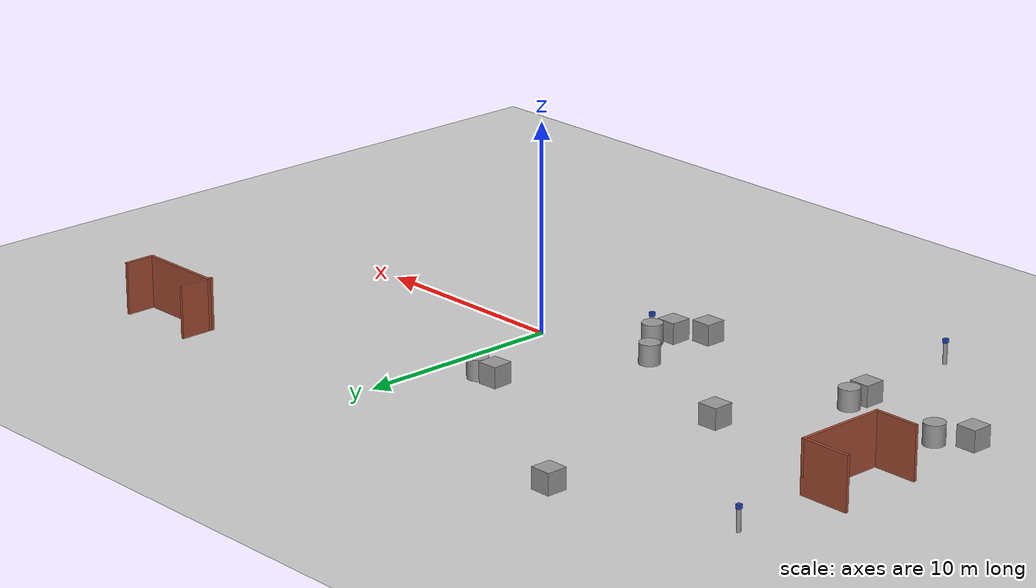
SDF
<sdf version="1.7">
 <world name="simulate_indoor">
  <model name="ground_plane">
   <static>1</static>
   <link name="link">
    <collision name="collision">
     <geometry><plane><normal>0 0 1</normal><size>100 100</size></plane></geometry>
     <surface>
      <contact><collide_bitmask>65535</collide_bitmask></contact>
      <friction><ode><mu>100</mu><mu2>50</mu2></ode></friction>
     </surface>
    </collision>
    <visual name="visual">
     <cast_shadows>0</cast_shadows>
     <geometry><plane><normal>0 0 1</normal><size>100 100</size></plane></geometry>
     <material>
      <script><uri>file://media/materials/scripts/gazebo.material</uri><name>Gazebo/Grey</name></script>
     </material>
    </visual>
   </link>
  </model>
  <model name="UWB_0">
   <link name="link_1">
    <inertial>
     <mass>1</mass>
     <inertia><ixx>0.145833</ixx><ixy>0</ixy><ixz>0</ixz><iyy>0.145833</iyy><iyz>0</iyz><izz>0.125</izz></inertia>
    </inertial>
    <pose>0 0 0.5 0 -0 0</pose>
    <visual name="visual">
     <geometry><cylinder><radius>0.1</radius><length>1</length></cylinder></geometry>
     <material>
      <lighting>1</lighting>
      <script><uri>file://media/materials/scripts/gazebo.material</uri><name>Gazebo/Grey</name></script>
     </material>
    </visual>
    <collision name="collision">
     <geometry><cylinder><radius>0.1</radius><length>1</length></cylinder></geometry>
     <surface>
      <friction>
       <ode><mu>1</mu><mu2>1</mu2><fdir1>0 0 0</fdir1><slip1>0</slip1><slip2>0</slip2></ode>
       <torsional>
        <coefficient>1</coefficient>
        <patch_radius>0</patch_radius>
        <surface_radius>0</surface_radius>
        <use_patch_radius>1</use_patch_radius>
        <ode><slip>0</slip></ode>
       </torsional>
      </friction>
      <bounce><restitution_coefficient>0</restitution_coefficient><threshold>1e+06</threshold></bounce>
      <contact>
       <collide_without_contact>0</collide_without_contact>
       <collide_without_contact_bitmask>1</collide_without_contact_bitmask>
       <collide_bitmask>1</collide_bitmask>
       <ode>
        <soft_cfm>0</soft_cfm>
        <soft_erp>0.2</soft_erp>
        <kp>1e+13</kp>
        <kd>1</kd>
        <max_vel>0.01</max_vel>
        <min_depth>0</min_depth>
       </ode>
       <bullet>
        <split_impulse>1</split_impulse>
        <split_impulse_penetration_threshold>-0.01</split_impulse_penetration_threshold>
        <soft_cfm>0</soft_cfm>
        <soft_erp>0.2</soft_erp>
        <kp>1e+13</kp>
        <kd>1</kd>
       </bullet>
      </contact>
     </surface>
    </collision>
   </link>
   <link name="link_2">
    <inertial>
     <mass>1</mass>
     <inertia>
      <ixx>0.166667</ixx>
      <ixy>0</ixy>
      <ixz>0</ixz>
      <iyy>0.166667</iyy>
      <iyz>0</iyz>
      <izz>0.166667</izz>
     </inertia>
    </inertial>
    <pose>0 0 1.1 0 -0 0</pose>
    <visual name="visual">
     <geometry><box><size>0.2 0.2 0.2</size></box></geometry>
     <material>
      <lighting>1</lighting>
      <script><uri>file://media/materials/scripts/gazebo.material</uri><name>Gazebo/Blue</name></script>
      <shader type="vertex"><normal_map>__default__</normal_map></shader>
     </material>
    </visual>
    <collision name="collision">
     <geometry><box><size>0.2 0.2 0.2</size></box></geometry>
     <surface>
      <friction>
       <ode><mu>1</mu><mu2>1</mu2><fdir1>0 0 0</fdir1><slip1>0</slip1><slip2>0</slip2></ode>
       <torsional>
        <coefficient>1</coefficient>
        <patch_radius>0</patch_radius>
        <surface_radius>0</surface_radius>
        <use_patch_radius>1</use_patch_radius>
        <ode><slip>0</slip></ode>
       </torsional>
      </friction>
      <bounce><restitution_coefficient>0</restitution_coefficient><threshold>1e+06</threshold></bounce>
      <contact>
       <collide_without_contact>0</collide_without_contact>
       <collide_without_contact_bitmask>1</collide_without_contact_bitmask>
       <collide_bitmask>1</collide_bitmask>
       <ode>
        <soft_cfm>0</soft_cfm>
        <soft_erp>0.2</soft_erp>
        <kp>1e+13</kp>
        <kd>1</kd>
        <max_vel>0.01</max_vel>
        <min_depth>0</min_depth>
       </ode>
       <bullet>
        <split_impulse>1</split_impulse>
        <split_impulse_penetration_threshold>-0.01</split_impulse_penetration_threshold>
        <soft_cfm>0</soft_cfm>
        <soft_erp>0.2</soft_erp>
        <kp>1e+13</kp>
        <kd>1</kd>
       </bullet>
      </contact>
     </surface>
    </collision>
   </link>
   <static>1</static>
   <pose>-14.8524 -10.5236 0 0 -0 0</pose>
  </model>
  <model name="UWB_3">
   <link name="link_1">
    <inertial>
     <mass>1</mass>
     <inertia><ixx>0.145833</ixx><ixy>0</ixy><ixz>0</ixz><iyy>0.145833</iyy><iyz>0</iyz><izz>0.125</izz></inertia>
    </inertial>
    <pose>0 0 0.5 0 -0 0</pose>
    <visual name="visual">
     <geometry><cylinder><radius>0.1</radius><length>1</length></cylinder></geometry>
     <material>
      <lighting>1</lighting>
      <script><uri>file://media/materials/scripts/gazebo.material</uri><name>Gazebo/Grey</name></script>
     </material>
    </visual>
    <collision name="collision">
     <geometry><cylinder><radius>0.1</radius><length>1</length></cylinder></geometry>
     <surface>
      <friction>
       <ode><mu>1</mu><mu2>1</mu2><fdir1>0 0 0</fdir1><slip1>0</slip1><slip2>0</slip2></ode>
       <torsional>
        <coefficient>1</coefficient>
        <patch_radius>0</patch_radius>
        <surface_radius>0</surface_radius>
        <use_patch_radius>1</use_patch_radius>
        <ode><slip>0</slip></ode>
       </torsional>
      </friction>
      <bounce><restitution_coefficient>0</restitution_coefficient><threshold>1e+06</threshold></bounce>
      <contact>
       <collide_without_contact>0</collide_without_contact>
       <collide_without_contact_bitmask>1</collide_without_contact_bitmask>
       <collide_bitmask>1</collide_bitmask>
       <ode>
        <soft_cfm>0</soft_cfm>
        <soft_erp>0.2</soft_erp>
        <kp>1e+13</kp>
        <kd>1</kd>
        <max_vel>0.01</max_vel>
        <min_depth>0</min_depth>
       </ode>
       <bullet>
        <split_impulse>1</split_impulse>
        <split_impulse_penetration_threshold>-0.01</split_impulse_penetration_threshold>
        <soft_cfm>0</soft_cfm>
        <soft_erp>0.2</soft_erp>
        <kp>1e+13</kp>
        <kd>1</kd>
       </bullet>
      </contact>
     </surface>
    </collision>
   </link>
   <link name="link_2">
    <inertial>
     <mass>1</mass>
     <inertia>
      <ixx>0.166667</ixx>
      <ixy>0</ixy>
      <ixz>0</ixz>
      <iyy>0.166667</iyy>
      <iyz>0</iyz>
      <izz>0.166667</izz>
     </inertia>
    </inertial>
    <pose>0 0 1.1 0 -0 0</pose>
    <visual name="visual">
     <geometry><box><size>0.2 0.2 0.2</size></box></geometry>
     <material>
      <lighting>1</lighting>
      <script><uri>file://media/materials/scripts/gazebo.material</uri><name>Gazebo/Blue</name></script>
      <shader type="vertex"><normal_map>__default__</normal_map></shader>
     </material>
    </visual>
    <collision name="collision">
     <geometry><box><size>0.2 0.2 0.2</size></box></geometry>
     <surface>
      <friction>
       <ode><mu>1</mu><mu2>1</mu2><fdir1>0 0 0</fdir1><slip1>0</slip1><slip2>0</slip2></ode>
       <torsional>
        <coefficient>1</coefficient>
        <patch_radius>0</patch_radius>
        <surface_radius>0</surface_radius>
        <use_patch_radius>1</use_patch_radius>
        <ode><slip>0</slip></ode>
       </torsional>
      </friction>
      <bounce><restitution_coefficient>0</restitution_coefficient><threshold>1e+06</threshold></bounce>
      <contact>
       <collide_without_contact>0</collide_without_contact>
       <collide_without_contact_bitmask>1</collide_without_contact_bitmask>
       <collide_bitmask>1</collide_bitmask>
       <ode>
        <soft_cfm>0</soft_cfm>
        <soft_erp>0.2</soft_erp>
        <kp>1e+13</kp>
        <kd>1</kd>
        <max_vel>0.01</max_vel>
        <min_depth>0</min_depth>
       </ode>
       <bullet>
        <split_impulse>1</split_impulse>
        <split_impulse_penetration_threshold>-0.01</split_impulse_penetration_threshold>
        <soft_cfm>0</soft_cfm>
        <soft_erp>0.2</soft_erp>
        <kp>1e+13</kp>
        <kd>1</kd>
       </bullet>
      </contact>
     </surface>
    </collision>
   </link>
   <static>1</static>
   <pose>-21.2638 9.11846 0 0 -0 0</pose>
  </model>
  <model name="UWB_5">
   <link name="link_1">
    <inertial>
     <mass>1</mass>
     <inertia><ixx>0.145833</ixx><ixy>0</ixy><ixz>0</ixz><iyy>0.145833</iyy><iyz>0</iyz><izz>0.125</izz></inertia>
    </inertial>
    <pose>0 0 0.5 0 -0 0</pose>
    <visual name="visual">
     <geometry><cylinder><radius>0.1</radius><length>1</length></cylinder></geometry>
     <material>
      <lighting>1</lighting>
      <script><uri>file://media/materials/scripts/gazebo.material</uri><name>Gazebo/Grey</name></script>
     </material>
    </visual>
    <collision name="collision">
     <geometry><cylinder><radius>0.1</radius><length>1</length></cylinder></geometry>
     <surface>
      <friction>
       <ode><mu>1</mu><mu2>1</mu2><fdir1>0 0 0</fdir1><slip1>0</slip1><slip2>0</slip2></ode>
       <torsional>
        <coefficient>1</coefficient>
        <patch_radius>0</patch_radius>
        <surface_radius>0</surface_radius>
        <use_patch_radius>1</use_patch_radius>
        <ode><slip>0</slip></ode>
       </torsional>
      </friction>
      <bounce><restitution_coefficient>0</restitution_coefficient><threshold>1e+06</threshold></bounce>
      <contact>
       <collide_without_contact>0</collide_without_contact>
       <collide_without_contact_bitmask>1</collide_without_contact_bitmask>
       <collide_bitmask>1</collide_bitmask>
       <ode>
        <soft_cfm>0</soft_cfm>
        <soft_erp>0.2</soft_erp>
        <kp>1e+13</kp>
        <kd>1</kd>
        <max_vel>0.01</max_vel>
        <min_depth>0</min_depth>
       </ode>
       <bullet>
        <split_impulse>1</split_impulse>
        <split_impulse_penetration_threshold>-0.01</split_impulse_penetration_threshold>
        <soft_cfm>0</soft_cfm>
        <soft_erp>0.2</soft_erp>
        <kp>1e+13</kp>
        <kd>1</kd>
       </bullet>
      </contact>
     </surface>
    </collision>
   </link>
   <link name="link_2">
    <inertial>
     <mass>1</mass>
     <inertia>
      <ixx>0.166667</ixx>
      <ixy>0</ixy>
      <ixz>0</ixz>
      <iyy>0.166667</iyy>
      <iyz>0</iyz>
      <izz>0.166667</izz>
     </inertia>
    </inertial>
    <pose>0 0 1.1 0 -0 0</pose>
    <visual name="visual">
     <geometry><box><size>0.2 0.2 0.2</size></box></geometry>
     <material>
      <lighting>1</lighting>
      <script><uri>file://media/materials/scripts/gazebo.material</uri><name>Gazebo/Blue</name></script>
      <shader type="vertex"><normal_map>__default__</normal_map></shader>
     </material>
    </visual>
    <collision name="collision">
     <geometry><box><size>0.2 0.2 0.2</size></box></geometry>
     <surface>
      <friction>
       <ode><mu>1</mu><mu2>1</mu2><fdir1>0 0 0</fdir1><slip1>0</slip1><slip2>0</slip2></ode>
       <torsional>
        <coefficient>1</coefficient>
        <patch_radius>0</patch_radius>
        <surface_radius>0</surface_radius>
        <use_patch_radius>1</use_patch_radius>
        <ode><slip>0</slip></ode>
       </torsional>
      </friction>
      <bounce><restitution_coefficient>0</restitution_coefficient><threshold>1e+06</threshold></bounce>
      <contact>
       <collide_without_contact>0</collide_without_contact>
       <collide_without_contact_bitmask>1</collide_without_contact_bitmask>
       <collide_bitmask>1</collide_bitmask>
       <ode>
        <soft_cfm>0</soft_cfm>
        <soft_erp>0.2</soft_erp>
        <kp>1e+13</kp>
        <kd>1</kd>
        <max_vel>0.01</max_vel>
        <min_depth>0</min_depth>
       </ode>
       <bullet>
        <split_impulse>1</split_impulse>
        <split_impulse_penetration_threshold>-0.01</split_impulse_penetration_threshold>
        <soft_cfm>0</soft_cfm>
        <soft_erp>0.2</soft_erp>
        <kp>1e+13</kp>
        <kd>1</kd>
       </bullet>
      </contact>
     </surface>
    </collision>
   </link>
   <static>1</static>
   <pose>-3.69331 -3.35821 0 0 -0 0</pose>
  </model>
  <model name="unit_box_0">
   <pose>-15.4923 -4.67019 0.499995 1e-05 -0 0</pose>
   <link name="link">
    <inertial>
     <mass>1</mass>
     <inertia>
      <ixx>0.166667</ixx>
      <ixy>0</ixy>
      <ixz>0</ixz>
      <iyy>0.166667</iyy>
      <iyz>0</iyz>
      <izz>0.166667</izz>
     </inertia>
    </inertial>
    <collision name="collision"><geometry><box><size>1 1 1</size></box></geometry></collision>
    <visual name="visual">
     <geometry><box><size>1 1 1</size></box></geometry>
     <material>
      <script><name>Gazebo/Grey</name><uri>file://media/materials/scripts/gazebo.material</uri></script>
     </material>
    </visual>
   </link>
  </model>
  <model name="unit_cylinder_3">
   <pose>-15.4939 -3.57788 0.499996 -3e-06 3e-06 0</pose>
   <link name="link">
    <inertial>
     <mass>1</mass>
     <inertia><ixx>0.145833</ixx><ixy>0</ixy><ixz>0</ixz><iyy>0.145833</iyy><iyz>0</iyz><izz>0.125</izz></inertia>
    </inertial>
    <collision name="collision">
     <geometry><cylinder><radius>0.5</radius><length>1</length></cylinder></geometry>
    </collision>
    <visual name="visual">
     <geometry><cylinder><radius>0.5</radius><length>1</length></cylinder></geometry>
     <material>
      <script><name>Gazebo/Grey</name><uri>file://media/materials/scripts/gazebo.material</uri></script>
     </material>
    </visual>
   </link>
  </model>
  <model name="building_3_0">
   <pose>-4.0948 6.27094 0 0 -0 0</pose>
   <link name="Wall_11">
    <collision name="Wall_11_Collision">
     <geometry><box><size>4.5 0.15 2.5</size></box></geometry>
     <pose>0 0 1.25 0 -0 0</pose>
    </collision>
    <visual name="Wall_11_Visual">
     <pose>0 0 1.25 0 -0 0</pose>
     <geometry><box><size>4.5 0.15 2.5</size></box></geometry>
     <material>
      <script><uri>file://media/materials/scripts/gazebo.material</uri><name>Gazebo/Bricks</name></script>
      <ambient>1 1 1 1</ambient>
     </material>
     <meta><layer>0</layer></meta>
    </visual>
    <pose>-16.3987 -3.80717 0 0 -0 -1.5708</pose>
   </link>
   <link name="Wall_12">
    <collision name="Wall_12_Collision">
     <geometry><box><size>2.25 0.15 2.5</size></box></geometry>
     <pose>0 0 1.25 0 -0 0</pose>
    </collision>
    <visual name="Wall_12_Visual">
     <pose>0 0 1.25 0 -0 0</pose>
     <geometry><box><size>2.25 0.15 2.5</size></box></geometry>
     <material>
      <script><uri>file://media/materials/scripts/gazebo.material</uri><name>Gazebo/Bricks</name></script>
      <ambient>1 1 1 1</ambient>
     </material>
     <meta><layer>0</layer></meta>
    </visual>
    <pose>-17.4487 -5.98217 0 0 -0 3.14159</pose>
   </link>
   <link name="Wall_4">
    <collision name="Wall_4_Collision">
     <geometry><box><size>1.75 0.15 2.5</size></box></geometry>
     <pose>0 0 1.25 0 -0 0</pose>
    </collision>
    <visual name="Wall_4_Visual">
     <pose>0 0 1.25 0 -0 0</pose>
     <geometry><box><size>1.75 0.15 2.5</size></box></geometry>
     <material>
      <script><uri>file://media/materials/scripts/gazebo.material</uri><name>Gazebo/Bricks</name></script>
      <ambient>1 1 1 1</ambient>
     </material>
     <meta><layer>0</layer></meta>
    </visual>
    <pose>14.5779 5.18217 0 0 -0 1.5708</pose>
   </link>
   <link name="Wall_6">
    <collision name="Wall_6_Collision">
     <geometry><box><size>4.25 0.15 2.5</size></box></geometry>
     <pose>0 0 1.25 0 -0 0</pose>
    </collision>
    <visual name="Wall_6_Visual">
     <pose>0 0 1.25 0 -0 0</pose>
     <geometry><box><size>4.25 0.15 2.5</size></box></geometry>
     <material>
      <script><uri>file://media/materials/scripts/gazebo.material</uri><name>Gazebo/Bricks</name></script>
      <ambient>1 1 1 1</ambient>
     </material>
     <meta><layer>0</layer></meta>
    </visual>
    <pose>16.6279 4.52369 0 0 -0 0</pose>
   </link>
   <link name="Wall_7">
    <collision name="Wall_7_Collision">
     <geometry><box><size>1.46227 0.15 2.5</size></box></geometry>
     <pose>0 0 1.25 0 -0 0</pose>
    </collision>
    <visual name="Wall_7_Visual">
     <pose>0 0 1.25 0 -0 0</pose>
     <geometry><box><size>1.46227 0.15 2.5</size></box></geometry>
     <material>
      <script><uri>file://media/materials/scripts/gazebo.material</uri><name>Gazebo/Bricks</name></script>
      <ambient>1 1 1 1</ambient>
     </material>
     <meta><layer>0</layer></meta>
    </visual>
    <pose>18.7487 5.25058 0 0 -0 1.5708</pose>
   </link>
   <link name="Wall_9">
    <collision name="Wall_9_Collision">
     <geometry><box><size>2.5 0.15 2.5</size></box></geometry>
     <pose>0 0 1.25 0 -0 0</pose>
    </collision>
    <visual name="Wall_9_Visual">
     <pose>0 0 1.25 0 -0 0</pose>
     <geometry><box><size>2.5 0.15 2.5</size></box></geometry>
     <material>
      <script><uri>file://media/materials/scripts/gazebo.material</uri><name>Gazebo/Bricks</name></script>
      <ambient>1 1 1 1</ambient>
     </material>
     <meta><layer>0</layer></meta>
    </visual>
    <pose>-17.5737 -1.63217 0 0 -0 0</pose>
   </link>
   <static>1</static>
  </model>
  <model name="unit_box_1">
   <pose>-4.55267 -3.8569 0.499995 1e-05 -0 0</pose>
   <link name="link">
    <inertial>
     <mass>1</mass>
     <inertia>
      <ixx>0.166667</ixx>
      <ixy>0</ixy>
      <ixz>0</ixz>
      <iyy>0.166667</iyy>
      <iyz>0</iyz>
      <izz>0.166667</izz>
     </inertia>
    </inertial>
    <collision name="collision"><geometry><box><size>1 1 1</size></box></geometry></collision>
    <visual name="visual">
     <geometry><box><size>1 1 1</size></box></geometry>
     <material>
      <script><name>Gazebo/Grey</name><uri>file://media/materials/scripts/gazebo.material</uri></script>
     </material>
    </visual>
   </link>
  </model>
  <model name="unit_cylinder_4">
   <pose>-4.25421 -2.81757 0.499994 3e-06 -3e-06 0</pose>
   <link name="link">
    <inertial>
     <mass>1</mass>
     <inertia><ixx>0.145833</ixx><ixy>0</ixy><ixz>0</ixz><iyy>0.145833</iyy><iyz>0</iyz><izz>0.125</izz></inertia>
    </inertial>
    <collision name="collision">
     <geometry><cylinder><radius>0.5</radius><length>1</length></cylinder></geometry>
    </collision>
    <visual name="visual">
     <geometry><cylinder><radius>0.5</radius><length>1</length></cylinder></geometry>
     <material>
      <script><name>Gazebo/Grey</name><uri>file://media/materials/scripts/gazebo.material</uri></script>
     </material>
    </visual>
   </link>
  </model>
  <model name="unit_cylinder_8">
   <pose>-20.5615 -3.27499 0.499996 4e-06 2e-06 -0</pose>
   <link name="link">
    <inertial>
     <mass>1</mass>
     <inertia><ixx>0.145833</ixx><ixy>0</ixy><ixz>0</ixz><iyy>0.145833</iyy><iyz>0</iyz><izz>0.125</izz></inertia>
    </inertial>
    <collision name="collision">
     <geometry><cylinder><radius>0.5</radius><length>1</length></cylinder></geometry>
    </collision>
    <visual name="visual">
     <geometry><cylinder><radius>0.5</radius><length>1</length></cylinder></geometry>
     <material>
      <script><name>Gazebo/Grey</name><uri>file://media/materials/scripts/gazebo.material</uri></script>
     </material>
    </visual>
   </link>
  </model>
  <model name="unit_cylinder_10">
   <pose>-5.92885 -1.01286 0.499996 4e-06 2e-06 -0</pose>
   <link name="link">
    <inertial>
     <mass>1</mass>
     <inertia><ixx>0.145833</ixx><ixy>0</ixy><ixz>0</ixz><iyy>0.145833</iyy><iyz>0</iyz><izz>0.125</izz></inertia>
    </inertial>
    <collision name="collision">
     <geometry><cylinder><radius>0.5</radius><length>1</length></cylinder></geometry>
    </collision>
    <visual name="visual">
     <geometry><cylinder><radius>0.5</radius><length>1</length></cylinder></geometry>
     <material>
      <script><name>Gazebo/Grey</name><uri>file://media/materials/scripts/gazebo.material</uri></script>
     </material>
    </visual>
   </link>
  </model>
  <model name="unit_box_7">
   <pose>-3.07321 5.60682 0.5 0 -0 0.052977</pose>
   <link name="link">
    <inertial>
     <mass>1</mass>
     <inertia>
      <ixx>0.166667</ixx>
      <ixy>0</ixy>
      <ixz>0</ixz>
      <iyy>0.166667</iyy>
      <iyz>0</iyz>
      <izz>0.166667</izz>
     </inertia>
    </inertial>
    <collision name="collision"><geometry><box><size>1 1 1</size></box></geometry></collision>
    <visual name="visual">
     <geometry><box><size>1 1 1</size></box></geometry>
     <material>
      <script><name>Gazebo/Grey</name><uri>file://media/materials/scripts/gazebo.material</uri></script>
     </material>
    </visual>
   </link>
  </model>
  <model name="unit_cylinder_11">
   <pose>-2.07796 5.72306 0.499999 0 0 -0.01635</pose>
   <link name="link">
    <inertial>
     <mass>1</mass>
     <inertia><ixx>0.145833</ixx><ixy>0</ixy><ixz>0</ixz><iyy>0.145833</iyy><iyz>0</iyz><izz>0.125</izz></inertia>
    </inertial>
    <collision name="collision">
     <geometry><cylinder><radius>0.5</radius><length>1</length></cylinder></geometry>
    </collision>
    <visual name="visual">
     <geometry><cylinder><radius>0.5</radius><length>1</length></cylinder></geometry>
     <material>
      <script><name>Gazebo/Grey</name><uri>file://media/materials/scripts/gazebo.material</uri></script>
     </material>
    </visual>
   </link>
  </model>
  <model name="unit_box_9">
   <pose>-5.75774 -4.86196 0.499995 1e-05 -0 0</pose>
   <link name="link">
    <inertial>
     <mass>1</mass>
     <inertia>
      <ixx>0.166667</ixx>
      <ixy>0</ixy>
      <ixz>0</ixz>
      <iyy>0.166667</iyy>
      <iyz>0</iyz>
      <izz>0.166667</izz>
     </inertia>
    </inertial>
    <collision name="collision"><geometry><box><size>1 1 1</size></box></geometry></collision>
    <visual name="visual">
     <geometry><box><size>1 1 1</size></box></geometry>
     <material>
      <script><name>Gazebo/Grey</name><uri>file://media/materials/scripts/gazebo.material</uri></script>
     </material>
    </visual>
   </link>
  </model>
  <model name="unit_box_10">
   <pose>-13.1483 11.7596 0.499996 -7e-06 -0 -2e-06</pose>
   <link name="link">
    <inertial>
     <mass>1</mass>
     <inertia>
      <ixx>0.166667</ixx>
      <ixy>0</ixy>
      <ixz>0</ixz>
      <iyy>0.166667</iyy>
      <iyz>0</iyz>
      <izz>0.166667</izz>
     </inertia>
    </inertial>
    <collision name="collision"><geometry><box><size>1 1 1</size></box></geometry></collision>
    <visual name="visual">
     <geometry><box><size>1 1 1</size></box></geometry>
     <material>
      <script><name>Gazebo/Grey</name><uri>file://media/materials/scripts/gazebo.material</uri></script>
     </material>
    </visual>
   </link>
  </model>
  <model name="unit_box_11">
   <pose>-21.8609 -4.24346 0.499995 1e-05 -0 0</pose>
   <link name="link">
    <inertial>
     <mass>1</mass>
     <inertia>
      <ixx>0.166667</ixx>
      <ixy>0</ixy>
      <ixz>0</ixz>
      <iyy>0.166667</iyy>
      <iyz>0</iyz>
      <izz>0.166667</izz>
     </inertia>
    </inertial>
    <collision name="collision"><geometry><box><size>1 1 1</size></box></geometry></collision>
    <visual name="visual">
     <geometry><box><size>1 1 1</size></box></geometry>
     <material>
      <script><name>Gazebo/Grey</name><uri>file://media/materials/scripts/gazebo.material</uri></script>
     </material>
    </visual>
   </link>
  </model>
  <model name="unit_box">
   <pose>-12.8693 1.92193 0.499995 1e-05 -0 0.02979</pose>
   <link name="link">
    <inertial>
     <mass>1</mass>
     <inertia>
      <ixx>0.166667</ixx>
      <ixy>0</ixy>
      <ixz>0</ixz>
      <iyy>0.166667</iyy>
      <iyz>0</iyz>
      <izz>0.166667</izz>
     </inertia>
    </inertial>
    <collision name="collision"><geometry><box><size>1 1 1</size></box></geometry></collision>
    <visual name="visual">
     <geometry><box><size>1 1 1</size></box></geometry>
     <material>
      <script><name>Gazebo/Grey</name><uri>file://media/materials/scripts/gazebo.material</uri></script>
     </material>
    </visual>
   </link>
  </model>
 </world>
</sdf>
